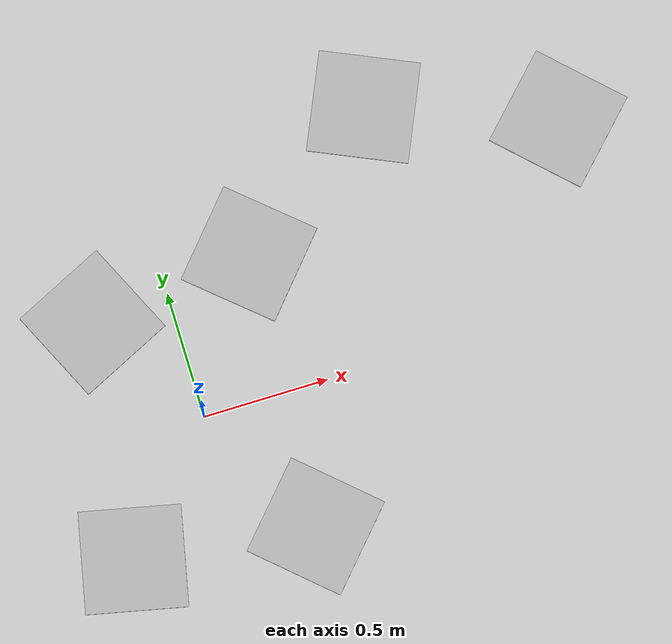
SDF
<sdf version="1.6">
 <world name="default">
  <light name="sun" type="directional">
   <pose>0 0 10 0 -0 0</pose>
   <diffuse>0.8 0.8 0.8 1</diffuse>
   <specular>0.1 0.1 0.1 1</specular>
   <attenuation>
    <range>1000</range>
    <constant>0.9</constant>
    <linear>0.01</linear>
    <quadratic>0.001</quadratic>
   </attenuation>
   <direction>-0.5 0.5 -1</direction>
  </light>
  <model name="ground_plane">
   <static>1</static>
   <link name="link">
    <collision name="collision">
     <geometry><plane><normal>0 0 1</normal><size>100 100</size></plane></geometry>
     <surface><friction><ode><mu>100</mu><mu2>50</mu2></ode></friction></surface>
    </collision>
    <visual name="visual">
     <cast_shadows>0</cast_shadows>
     <geometry><plane><normal>0 0 1</normal><size>100 100</size></plane></geometry>
     <material>
      <script><uri>file://media/materials/scripts/gazebo.material</uri><name>Gazebo/Grey</name></script>
     </material>
    </visual>
   </link>
  </model>
  <gravity>0 0 -9.8</gravity>
  <magnetic_field>6e-06 2.3e-05 -4.2e-05</magnetic_field>
  <atmosphere type="adiabatic"/>
  <physics name="default_physics" default="0" type="ode">
   <max_step_size>0.001</max_step_size>
   <real_time_factor>1</real_time_factor>
   <real_time_update_rate>1000</real_time_update_rate>
  </physics>
  <scene><ambient>0.4 0.4 0.4 1</ambient><background>0.7 0.7 0.7 1</background><shadows>1</shadows></scene>
  <spherical_coordinates>
   <surface_model>EARTH_WGS84</surface_model>
   <latitude_deg>0</latitude_deg>
   <longitude_deg>0</longitude_deg>
   <elevation>0</elevation>
   <heading_deg>0</heading_deg>
  </spherical_coordinates>
  <model name="april_tag0">
   <static>1</static>
   <link name="plane">
    <visual name="april_tag_texture">
     <geometry><box><size>0.4 0.4 0.01</size></box></geometry>
     <material>
      <script>
       <uri>model://april_tag0/materials/scripts</uri>
       <uri>model://april_tag0/materials/textures</uri>
       <name>AprilTag/M0</name>
      </script>
     </material>
    </visual>
   </link>
   <pose>-0.421394 -0.452308 0 0 0 -0.213017</pose>
  </model>
  <model name="april_tag0_0">
   <static>1</static>
   <link name="plane">
    <visual name="april_tag_texture">
     <geometry><box><size>0.4 0.4 0.01</size></box></geometry>
     <material>
      <script>
       <uri>model://april_tag0/materials/scripts</uri>
       <uri>model://april_tag0/materials/textures</uri>
       <name>AprilTag/M1</name>
      </script>
     </material>
    </visual>
   </link>
   <pose>0.289577 -0.533528 0 0 -0 0.834572</pose>
  </model>
  <model name="april_tag0_1">
   <static>1</static>
   <link name="plane">
    <visual name="april_tag_texture">
     <geometry><box><size>0.4 0.4 0.01</size></box></geometry>
     <material>
      <script>
       <uri>model://april_tag0/materials/scripts</uri>
       <uri>model://april_tag0/materials/textures</uri>
       <name>AprilTag/M2</name>
      </script>
     </material>
    </visual>
   </link>
   <pose>-0.309966 0.477862 0 0 -0 0.444327</pose>
  </model>
  <model name="april_tag0_2">
   <static>1</static>
   <link name="plane">
    <visual name="april_tag_texture">
     <geometry><box><size>0.4 0.4 0.01</size></box></geometry>
     <material>
      <script>
       <uri>model://april_tag0/materials/scripts</uri>
       <uri>model://april_tag0/materials/textures</uri>
       <name>AprilTag/M3</name>
      </script>
     </material>
    </visual>
   </link>
   <pose>0.349055 0.559488 0 0 0 -0.717856</pose>
  </model>
  <model name="april_tag0_3">
   <static>1</static>
   <link name="plane">
    <visual name="april_tag_texture">
     <geometry><box><size>0.4 0.4 0.01</size></box></geometry>
     <material>
      <script>
       <uri>model://april_tag0/materials/scripts</uri>
       <uri>model://april_tag0/materials/textures</uri>
       <name>AprilTag/M4</name>
      </script>
     </material>
    </visual>
   </link>
   <pose>1.65542 0.720315 0 0 -0 0.797296</pose>
  </model>
  <model name="april_tag0_4">
   <static>1</static>
   <link name="plane">
    <visual name="april_tag_texture">
     <geometry><box><size>0.4 0.4 0.01</size></box></geometry>
     <material>
      <script>
       <uri>model://april_tag0/materials/scripts</uri>
       <uri>model://april_tag0/materials/textures</uri>
       <name>AprilTag/M5</name>
      </script>
     </material>
    </visual>
   </link>
   <pose>0.94253 0.985137 0 0 0 -0.41839</pose>
  </model>
 </world>
</sdf>
